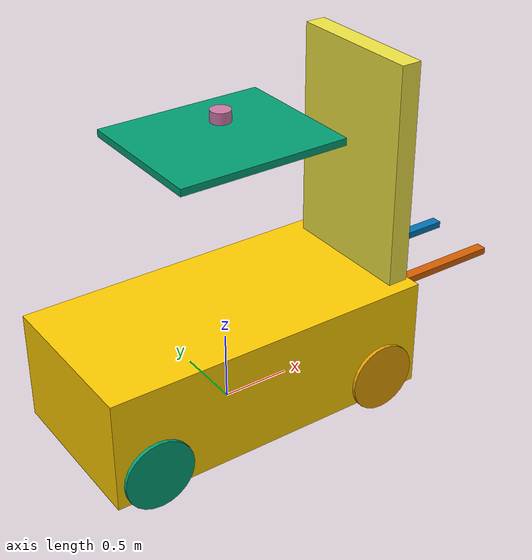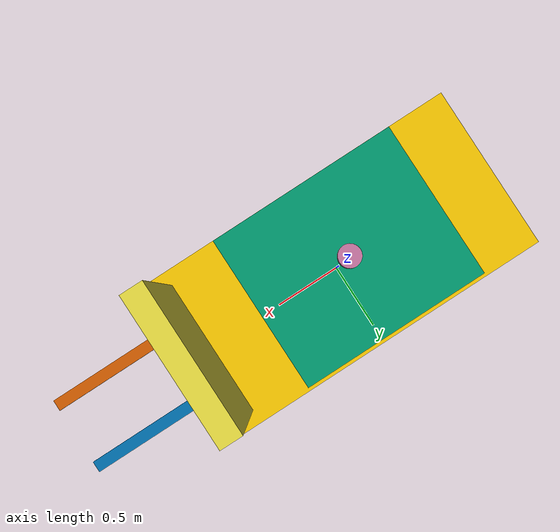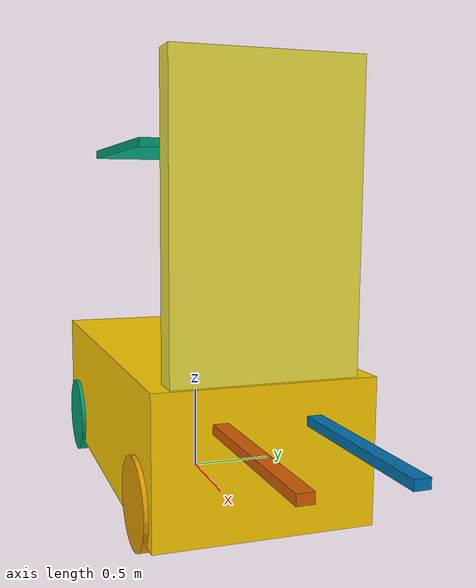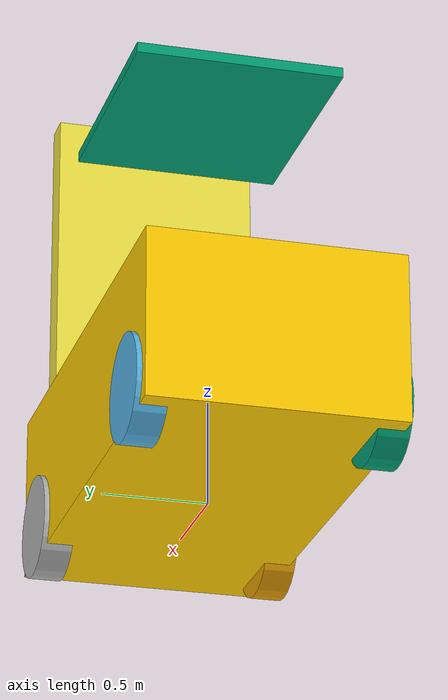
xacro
<?xml version="1.0"?>
<robot xmlns:xacro="http://www.ros.org/wiki/xacro" name="forklift_bot">

  <!-- Inertia Macros -->

  <xacro:macro name="inertial_box" params="mass x y z">
    <inertial>
      <origin xyz="0 0 0"/>
      <mass value="${mass}"/>
      <inertia
        ixx="${(1.0/12.0)*mass*(y*y+z*z)}"
        ixy="0" ixz="0"
        iyy="${(1.0/12.0)*mass*(x*x+z*z)}"
        iyz="0"
        izz="${(1.0/12.0)*mass*(x*x+y*y)}"/>
    </inertial>
  </xacro:macro>

  <xacro:macro name="inertial_cylinder" params="mass length radius">
    <inertial>
      <origin xyz="0 0 0"/>
      <mass value="${mass}"/>
      <inertia
        ixx="${(1.0/12.0)*mass*(3*radius*radius+length*length)}"
        ixy="0" ixz="0"
        iyy="${(1.0/12.0)*mass*(3*radius*radius+length*length)}"
        iyz="0"
        izz="${0.5*mass*radius*radius}"/>
    </inertial>
  </xacro:macro>

  <!-- Base -->

  <link name="base_footprint"/>

  <joint name="base_joint" type="fixed">
    <parent link="base_footprint"/>
    <child link="base_link"/>
    <origin xyz="0 0 0.4"/>
  </joint>

  <link name="base_link">

    <visual>
      <geometry>
        <box size="2.4 1.2 0.8"/>
      </geometry>
      <material name="yellow">
        <color rgba="1 0.8 0 1"/>
      </material>
    </visual>

    <collision>
      <geometry>
        <box size="2.4 1.2 0.8"/>
      </geometry>
    </collision>

    <xacro:inertial_box mass="1800" x="2.4" y="1.2" z="0.8"/>

  </link>

  <!-- Roof -->

  <link name="roof_link">

    <visual>
      <geometry>
        <box size="1.2 1.0 0.05"/>
      </geometry>
    </visual>

    <collision>
      <geometry>
        <box size="1.2 1.0 0.05"/>
      </geometry>
    </collision>

    <xacro:inertial_box mass="30" x="1.2" y="1.0" z="0.05"/>

  </link>

  <joint name="roof_joint" type="fixed">
    <parent link="base_link"/>
    <child link="roof_link"/>
    <origin xyz="0 0 1.6"/>
  </joint>

  <!-- Mast -->

  <link name="mast_link">

    <visual>
      <geometry>
        <box size="0.15 1.0 2.0"/>
      </geometry>
    </visual>

    <collision>
      <geometry>
        <box size="0.15 1.0 2.0"/>
      </geometry>
    </collision>

    <xacro:inertial_box mass="150" x="0.15" y="1.0" z="2.0"/>

  </link>

  <joint name="mast_joint" type="fixed">
    <parent link="base_link"/>
    <child link="mast_link"/>
    <origin xyz="1.1 0 1.0"/>
  </joint>

  <!-- Forks -->

  <link name="fork_left_link">
    <visual>
      <geometry>
        <box size="1.0 0.08 0.05"/>
      </geometry>
    </visual>
    <collision>
      <geometry>
        <box size="1.0 0.08 0.05"/>
      </geometry>
    </collision>
    <xacro:inertial_box mass="20" x="1.0" y="0.08" z="0.05"/>
  </link>

  <joint name="fork_left_joint" type="fixed">
    <parent link="mast_link"/>
    <child link="fork_left_link"/>
    <origin xyz="0.55 0.25 -0.8"/>
  </joint>

  <link name="fork_right_link">
    <visual>
      <geometry>
        <box size="1.0 0.08 0.05"/>
      </geometry>
    </visual>
    <collision>
      <geometry>
        <box size="1.0 0.08 0.05"/>
      </geometry>
    </collision>
    <xacro:inertial_box mass="20" x="1.0" y="0.08" z="0.05"/>
  </link>

  <joint name="fork_right_joint" type="fixed">
    <parent link="mast_link"/>
    <child link="fork_right_link"/>
    <origin xyz="0.55 -0.25 -0.8"/>
  </joint>

  <!-- LiDAR -->

  <link name="lidar_link">

    <visual>
      <geometry>
        <cylinder radius="0.07" length="0.08"/>
      </geometry>
    </visual>

    <collision>
      <geometry>
        <cylinder radius="0.07" length="0.08"/>
      </geometry>
    </collision>

    <xacro:inertial_cylinder mass="0.5" length="0.08" radius="0.07"/>

  </link>

  <joint name="lidar_joint" type="fixed">
    <parent link="roof_link"/>
    <child link="lidar_link"/>
    <origin xyz="0 0 0.15"/>
  </joint>

  <!-- Wheels -->

  <xacro:macro name="wheel" params="prefix x y">

    <link name="${prefix}_wheel">

      <visual>
        <origin rpy="1.5708 0 0"/>
        <geometry>
          <cylinder radius="0.25" length="0.15"/>
        </geometry>
      </visual>

      <collision>
        <origin rpy="1.5708 0 0"/>
        <geometry>
          <cylinder radius="0.25" length="0.15"/>
        </geometry>
      </collision>

      <xacro:inertial_cylinder
        mass="30"
        length="0.15"
        radius="0.25"/>

    </link>

    <joint name="${prefix}_wheel_joint" type="continuous">
      <parent link="base_link"/>
      <child link="${prefix}_wheel"/>
      <origin xyz="${x} ${y} -0.25"/>
      <axis xyz="0 1 0"/>
    </joint>

  </xacro:macro>

  <xacro:wheel prefix="front_left"  x="0.9"  y="0.55"/>
  <xacro:wheel prefix="front_right" x="0.9"  y="-0.55"/>
  <xacro:wheel prefix="rear_left"   x="-0.9" y="0.55"/>
  <xacro:wheel prefix="rear_right"  x="-0.9" y="-0.55"/>

  <!-- IMU on LiDAR -->

  <gazebo reference="lidar_link">

    <sensor name="imu_sensor" type="imu">

      <always_on>true</always_on>
      <update_rate>200</update_rate>

      <plugin
        filename="libgazebo_ros_imu_sensor.so"
        name="imu_plugin">

        <ros>
          <remapping>~/out:=imu/data</remapping>
        </ros>

      </plugin>

    </sensor>

  </gazebo>

  <!-- 3D LiDAR -->

  <gazebo reference="lidar_link">

    <sensor name="lidar_3d" type="ray">

      <always_on>true</always_on>
      <update_rate>10</update_rate>
      <visualize>true</visualize>

      <ray>

        <scan>

          <horizontal>
            <samples>360</samples>
            <min_angle>-3.14159</min_angle>
            <max_angle>3.14159</max_angle>
          </horizontal>

          <vertical>
            <samples>16</samples>
            <min_angle>-0.52</min_angle>
            <max_angle>0.26</max_angle>
          </vertical>

        </scan>

        <range>
          <min>0.3</min>
          <max>30.0</max>
        </range>

      </ray>

      <plugin
        name="scan_3d"
        filename="libgazebo_ros_ray_sensor.so">

        <ros>
          <remapping>~/out:=points</remapping>
        </ros>

        <output_type>sensor_msgs/PointCloud2</output_type>
        <frame_name>lidar_link</frame_name>

      </plugin>

    </sensor>

  </gazebo>

  <gazebo>
  <plugin
      name="diff_drive"
      filename="libgazebo_ros_diff_drive.so">

    <ros>
      <namespace>/</namespace>
    </ros>

    <update_rate>50</update_rate>

    <left_joint>front_left_wheel_joint</left_joint>
    <left_joint>rear_left_wheel_joint</left_joint>

    <right_joint>front_right_wheel_joint</right_joint>
    <right_joint>rear_right_wheel_joint</right_joint>

    <wheel_separation>1.1</wheel_separation>
    <wheel_diameter>0.5</wheel_diameter>

    <max_wheel_torque>500</max_wheel_torque>

    <publish_odom>true</publish_odom>
    <publish_odom_tf>true</publish_odom_tf>
    <publish_wheel_tf>true</publish_wheel_tf>

    <odometry_frame>odom</odometry_frame>
    <robot_base_frame>base_footprint</robot_base_frame>

    <topic>cmd_vel</topic>

  </plugin>
  </gazebo>

</robot>
